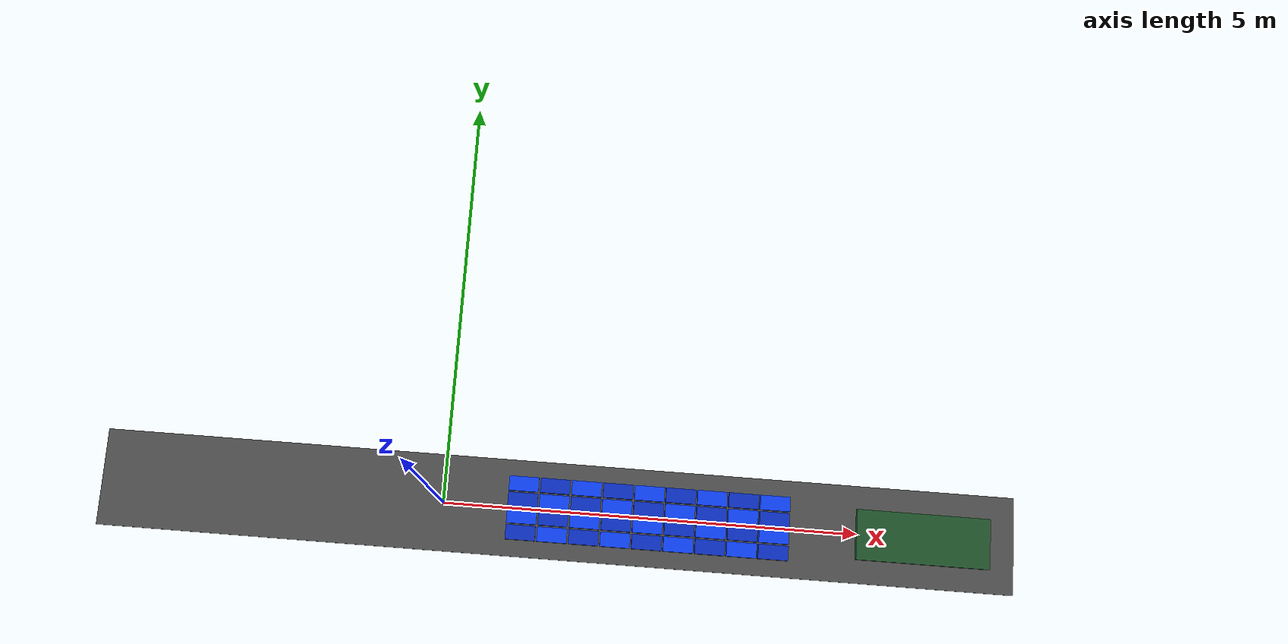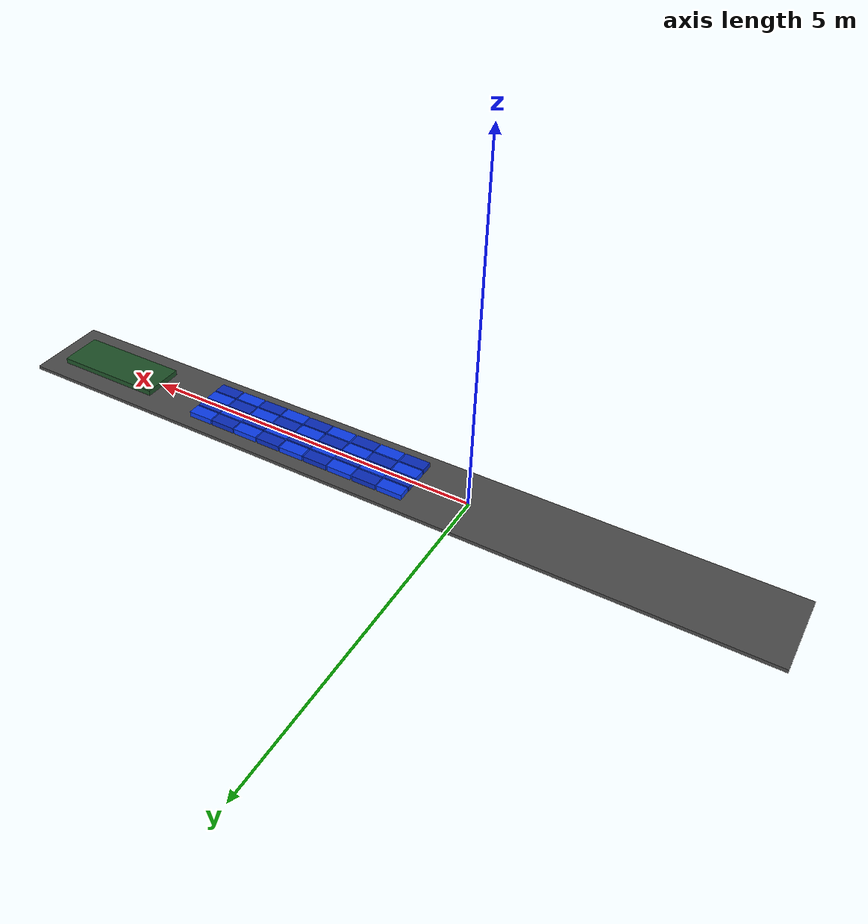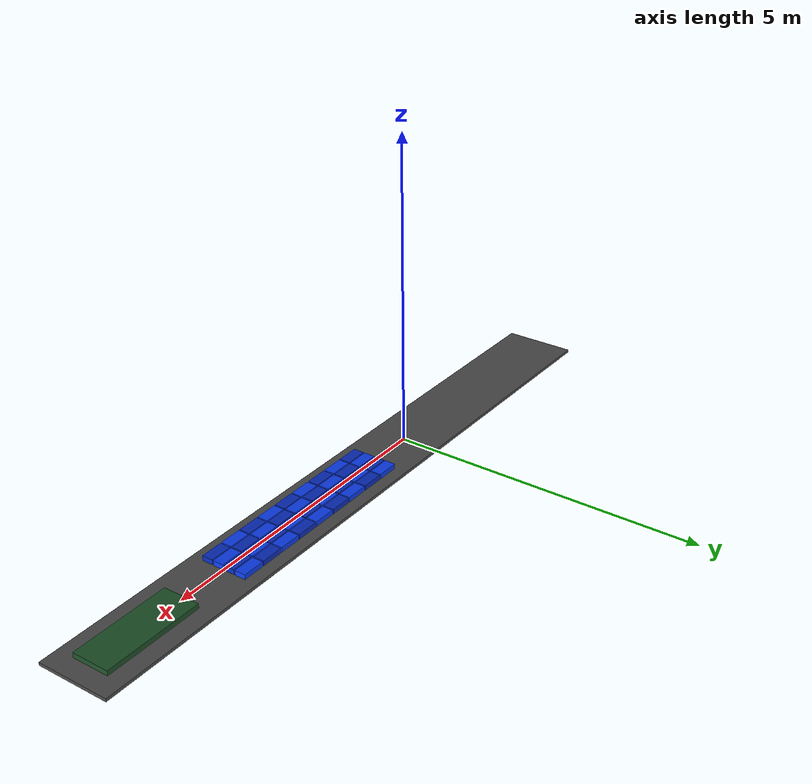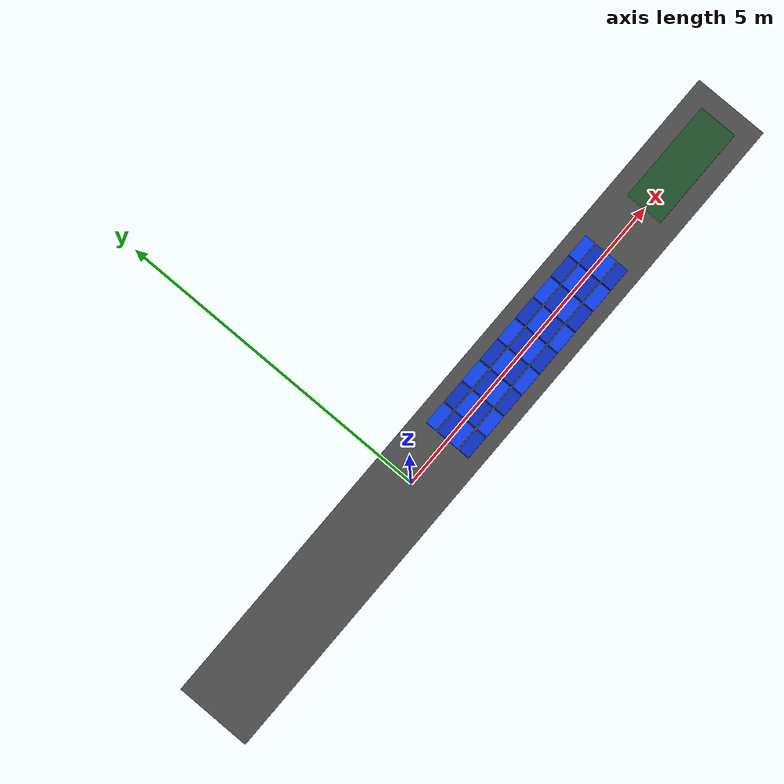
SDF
<sdf version="1.10">
 <world name="matrix_14x4_stream">
  <model name="platform">
   <static>true</static>
   <pose>1.355000 0 -0.025 0 0 0</pose>
   <link name="platform_link">
    <collision name="platform_collision">
     <geometry><box><size>11.050000 1.160000 0.05</size></box></geometry>
    </collision>
    <visual name="platform_visual">
     <geometry><box><size>11.050000 1.160000 0.05</size></box></geometry>
     <material><ambient>0.20 0.20 0.20 1</ambient><diffuse>0.30 0.30 0.30 1</diffuse></material>
    </visual>
   </link>
  </model>
  <model name="cell_r09_c00">
   <static>true</static>
   <pose>0.950000 -0.292500 0 0 0 0</pose>
   <link name="belt">
    <pose>0 0 0.040000 0 0 0</pose>
    <collision name="belt_collision">
     <max_contacts>8</max_contacts>
     <geometry><box><size>0.360000 0.175000 0.080000</size></box></geometry>
     <surface><friction><ode><mu>0.8</mu><mu2>0.8</mu2><fdir1>1 0 0</fdir1></ode></friction></surface>
    </collision>
    <visual name="belt_visual">
     <geometry><box><size>0.360000 0.175000 0.080000</size></box></geometry>
     <material><ambient>0.040 0.180 0.750 1</ambient><diffuse>0.040 0.180 0.750 1</diffuse></material>
    </visual>
   </link>
   <plugin filename="gz-sim-track-controller-system" name="gz::sim::systems::TrackController">
    <link>belt</link>
    <track_orientation>0 0 0</track_orientation>
    <velocity_topic>/singulator/cell/r09_c00/cmd_vel</velocity_topic>
    <odometry_topic>/singulator/cell/r09_c00/odometry</odometry_topic>
    <odometry_publish_frequency>1</odometry_publish_frequency>
    <min_velocity>-3.0</min_velocity>
    <max_velocity>3.0</max_velocity>
    <min_acceleration>-6.0</min_acceleration>
    <max_acceleration>6.0</max_acceleration>
    <min_jerk>-30.0</min_jerk>
    <max_jerk>30.0</max_jerk>
    <max_command_age>2.0</max_command_age>
   </plugin>
  </model>
  <model name="cell_r09_c01">
   <static>true</static>
   <pose>0.950000 -0.097500 0 0 0 0</pose>
   <link name="belt">
    <pose>0 0 0.040000 0 0 0</pose>
    <collision name="belt_collision">
     <max_contacts>8</max_contacts>
     <geometry><box><size>0.360000 0.175000 0.080000</size></box></geometry>
     <surface><friction><ode><mu>0.8</mu><mu2>0.8</mu2><fdir1>1 0 0</fdir1></ode></friction></surface>
    </collision>
    <visual name="belt_visual">
     <geometry><box><size>0.360000 0.175000 0.080000</size></box></geometry>
     <material><ambient>0.050 0.250 0.950 1</ambient><diffuse>0.050 0.250 0.950 1</diffuse></material>
    </visual>
   </link>
   <plugin filename="gz-sim-track-controller-system" name="gz::sim::systems::TrackController">
    <link>belt</link>
    <track_orientation>0 0 0</track_orientation>
    <velocity_topic>/singulator/cell/r09_c01/cmd_vel</velocity_topic>
    <odometry_topic>/singulator/cell/r09_c01/odometry</odometry_topic>
    <odometry_publish_frequency>1</odometry_publish_frequency>
    <min_velocity>-3.0</min_velocity>
    <max_velocity>3.0</max_velocity>
    <min_acceleration>-6.0</min_acceleration>
    <max_acceleration>6.0</max_acceleration>
    <min_jerk>-30.0</min_jerk>
    <max_jerk>30.0</max_jerk>
    <max_command_age>2.0</max_command_age>
   </plugin>
  </model>
  <model name="cell_r09_c02">
   <static>true</static>
   <pose>0.950000 0.097500 0 0 0 0</pose>
   <link name="belt">
    <pose>0 0 0.040000 0 0 0</pose>
    <collision name="belt_collision">
     <max_contacts>8</max_contacts>
     <geometry><box><size>0.360000 0.175000 0.080000</size></box></geometry>
     <surface><friction><ode><mu>0.8</mu><mu2>0.8</mu2><fdir1>1 0 0</fdir1></ode></friction></surface>
    </collision>
    <visual name="belt_visual">
     <geometry><box><size>0.360000 0.175000 0.080000</size></box></geometry>
     <material><ambient>0.040 0.180 0.750 1</ambient><diffuse>0.040 0.180 0.750 1</diffuse></material>
    </visual>
   </link>
   <plugin filename="gz-sim-track-controller-system" name="gz::sim::systems::TrackController">
    <link>belt</link>
    <track_orientation>0 0 0</track_orientation>
    <velocity_topic>/singulator/cell/r09_c02/cmd_vel</velocity_topic>
    <odometry_topic>/singulator/cell/r09_c02/odometry</odometry_topic>
    <odometry_publish_frequency>1</odometry_publish_frequency>
    <min_velocity>-3.0</min_velocity>
    <max_velocity>3.0</max_velocity>
    <min_acceleration>-6.0</min_acceleration>
    <max_acceleration>6.0</max_acceleration>
    <min_jerk>-30.0</min_jerk>
    <max_jerk>30.0</max_jerk>
    <max_command_age>2.0</max_command_age>
   </plugin>
  </model>
  <model name="cell_r09_c03">
   <static>true</static>
   <pose>0.950000 0.292500 0 0 0 0</pose>
   <link name="belt">
    <pose>0 0 0.040000 0 0 0</pose>
    <collision name="belt_collision">
     <max_contacts>8</max_contacts>
     <geometry><box><size>0.360000 0.175000 0.080000</size></box></geometry>
     <surface><friction><ode><mu>0.8</mu><mu2>0.8</mu2><fdir1>1 0 0</fdir1></ode></friction></surface>
    </collision>
    <visual name="belt_visual">
     <geometry><box><size>0.360000 0.175000 0.080000</size></box></geometry>
     <material><ambient>0.050 0.250 0.950 1</ambient><diffuse>0.050 0.250 0.950 1</diffuse></material>
    </visual>
   </link>
   <plugin filename="gz-sim-track-controller-system" name="gz::sim::systems::TrackController">
    <link>belt</link>
    <track_orientation>0 0 0</track_orientation>
    <velocity_topic>/singulator/cell/r09_c03/cmd_vel</velocity_topic>
    <odometry_topic>/singulator/cell/r09_c03/odometry</odometry_topic>
    <odometry_publish_frequency>1</odometry_publish_frequency>
    <min_velocity>-3.0</min_velocity>
    <max_velocity>3.0</max_velocity>
    <min_acceleration>-6.0</min_acceleration>
    <max_acceleration>6.0</max_acceleration>
    <min_jerk>-30.0</min_jerk>
    <max_jerk>30.0</max_jerk>
    <max_command_age>2.0</max_command_age>
   </plugin>
  </model>
  <model name="cell_r10_c00">
   <static>true</static>
   <pose>1.330000 -0.292500 0 0 0 0</pose>
   <link name="belt">
    <pose>0 0 0.040000 0 0 0</pose>
    <collision name="belt_collision">
     <max_contacts>8</max_contacts>
     <geometry><box><size>0.360000 0.175000 0.080000</size></box></geometry>
     <surface><friction><ode><mu>0.8</mu><mu2>0.8</mu2><fdir1>1 0 0</fdir1></ode></friction></surface>
    </collision>
    <visual name="belt_visual">
     <geometry><box><size>0.360000 0.175000 0.080000</size></box></geometry>
     <material><ambient>0.050 0.250 0.950 1</ambient><diffuse>0.050 0.250 0.950 1</diffuse></material>
    </visual>
   </link>
   <plugin filename="gz-sim-track-controller-system" name="gz::sim::systems::TrackController">
    <link>belt</link>
    <track_orientation>0 0 0</track_orientation>
    <velocity_topic>/singulator/cell/r10_c00/cmd_vel</velocity_topic>
    <odometry_topic>/singulator/cell/r10_c00/odometry</odometry_topic>
    <odometry_publish_frequency>1</odometry_publish_frequency>
    <min_velocity>-3.0</min_velocity>
    <max_velocity>3.0</max_velocity>
    <min_acceleration>-6.0</min_acceleration>
    <max_acceleration>6.0</max_acceleration>
    <min_jerk>-30.0</min_jerk>
    <max_jerk>30.0</max_jerk>
    <max_command_age>2.0</max_command_age>
   </plugin>
  </model>
  <model name="cell_r10_c01">
   <static>true</static>
   <pose>1.330000 -0.097500 0 0 0 0</pose>
   <link name="belt">
    <pose>0 0 0.040000 0 0 0</pose>
    <collision name="belt_collision">
     <max_contacts>8</max_contacts>
     <geometry><box><size>0.360000 0.175000 0.080000</size></box></geometry>
     <surface><friction><ode><mu>0.8</mu><mu2>0.8</mu2><fdir1>1 0 0</fdir1></ode></friction></surface>
    </collision>
    <visual name="belt_visual">
     <geometry><box><size>0.360000 0.175000 0.080000</size></box></geometry>
     <material><ambient>0.040 0.180 0.750 1</ambient><diffuse>0.040 0.180 0.750 1</diffuse></material>
    </visual>
   </link>
   <plugin filename="gz-sim-track-controller-system" name="gz::sim::systems::TrackController">
    <link>belt</link>
    <track_orientation>0 0 0</track_orientation>
    <velocity_topic>/singulator/cell/r10_c01/cmd_vel</velocity_topic>
    <odometry_topic>/singulator/cell/r10_c01/odometry</odometry_topic>
    <odometry_publish_frequency>1</odometry_publish_frequency>
    <min_velocity>-3.0</min_velocity>
    <max_velocity>3.0</max_velocity>
    <min_acceleration>-6.0</min_acceleration>
    <max_acceleration>6.0</max_acceleration>
    <min_jerk>-30.0</min_jerk>
    <max_jerk>30.0</max_jerk>
    <max_command_age>2.0</max_command_age>
   </plugin>
  </model>
  <model name="cell_r10_c02">
   <static>true</static>
   <pose>1.330000 0.097500 0 0 0 0</pose>
   <link name="belt">
    <pose>0 0 0.040000 0 0 0</pose>
    <collision name="belt_collision">
     <max_contacts>8</max_contacts>
     <geometry><box><size>0.360000 0.175000 0.080000</size></box></geometry>
     <surface><friction><ode><mu>0.8</mu><mu2>0.8</mu2><fdir1>1 0 0</fdir1></ode></friction></surface>
    </collision>
    <visual name="belt_visual">
     <geometry><box><size>0.360000 0.175000 0.080000</size></box></geometry>
     <material><ambient>0.050 0.250 0.950 1</ambient><diffuse>0.050 0.250 0.950 1</diffuse></material>
    </visual>
   </link>
   <plugin filename="gz-sim-track-controller-system" name="gz::sim::systems::TrackController">
    <link>belt</link>
    <track_orientation>0 0 0</track_orientation>
    <velocity_topic>/singulator/cell/r10_c02/cmd_vel</velocity_topic>
    <odometry_topic>/singulator/cell/r10_c02/odometry</odometry_topic>
    <odometry_publish_frequency>1</odometry_publish_frequency>
    <min_velocity>-3.0</min_velocity>
    <max_velocity>3.0</max_velocity>
    <min_acceleration>-6.0</min_acceleration>
    <max_acceleration>6.0</max_acceleration>
    <min_jerk>-30.0</min_jerk>
    <max_jerk>30.0</max_jerk>
    <max_command_age>2.0</max_command_age>
   </plugin>
  </model>
  <model name="cell_r10_c03">
   <static>true</static>
   <pose>1.330000 0.292500 0 0 0 0</pose>
   <link name="belt">
    <pose>0 0 0.040000 0 0 0</pose>
    <collision name="belt_collision">
     <max_contacts>8</max_contacts>
     <geometry><box><size>0.360000 0.175000 0.080000</size></box></geometry>
     <surface><friction><ode><mu>0.8</mu><mu2>0.8</mu2><fdir1>1 0 0</fdir1></ode></friction></surface>
    </collision>
    <visual name="belt_visual">
     <geometry><box><size>0.360000 0.175000 0.080000</size></box></geometry>
     <material><ambient>0.040 0.180 0.750 1</ambient><diffuse>0.040 0.180 0.750 1</diffuse></material>
    </visual>
   </link>
   <plugin filename="gz-sim-track-controller-system" name="gz::sim::systems::TrackController">
    <link>belt</link>
    <track_orientation>0 0 0</track_orientation>
    <velocity_topic>/singulator/cell/r10_c03/cmd_vel</velocity_topic>
    <odometry_topic>/singulator/cell/r10_c03/odometry</odometry_topic>
    <odometry_publish_frequency>1</odometry_publish_frequency>
    <min_velocity>-3.0</min_velocity>
    <max_velocity>3.0</max_velocity>
    <min_acceleration>-6.0</min_acceleration>
    <max_acceleration>6.0</max_acceleration>
    <min_jerk>-30.0</min_jerk>
    <max_jerk>30.0</max_jerk>
    <max_command_age>2.0</max_command_age>
   </plugin>
  </model>
  <model name="cell_r11_c00">
   <static>true</static>
   <pose>1.710000 -0.292500 0 0 0 0</pose>
   <link name="belt">
    <pose>0 0 0.040000 0 0 0</pose>
    <collision name="belt_collision">
     <max_contacts>8</max_contacts>
     <geometry><box><size>0.360000 0.175000 0.080000</size></box></geometry>
     <surface><friction><ode><mu>0.8</mu><mu2>0.8</mu2><fdir1>1 0 0</fdir1></ode></friction></surface>
    </collision>
    <visual name="belt_visual">
     <geometry><box><size>0.360000 0.175000 0.080000</size></box></geometry>
     <material><ambient>0.040 0.180 0.750 1</ambient><diffuse>0.040 0.180 0.750 1</diffuse></material>
    </visual>
   </link>
   <plugin filename="gz-sim-track-controller-system" name="gz::sim::systems::TrackController">
    <link>belt</link>
    <track_orientation>0 0 0</track_orientation>
    <velocity_topic>/singulator/cell/r11_c00/cmd_vel</velocity_topic>
    <odometry_topic>/singulator/cell/r11_c00/odometry</odometry_topic>
    <odometry_publish_frequency>1</odometry_publish_frequency>
    <min_velocity>-3.0</min_velocity>
    <max_velocity>3.0</max_velocity>
    <min_acceleration>-6.0</min_acceleration>
    <max_acceleration>6.0</max_acceleration>
    <min_jerk>-30.0</min_jerk>
    <max_jerk>30.0</max_jerk>
    <max_command_age>2.0</max_command_age>
   </plugin>
  </model>
  <model name="cell_r11_c01">
   <static>true</static>
   <pose>1.710000 -0.097500 0 0 0 0</pose>
   <link name="belt">
    <pose>0 0 0.040000 0 0 0</pose>
    <collision name="belt_collision">
     <max_contacts>8</max_contacts>
     <geometry><box><size>0.360000 0.175000 0.080000</size></box></geometry>
     <surface><friction><ode><mu>0.8</mu><mu2>0.8</mu2><fdir1>1 0 0</fdir1></ode></friction></surface>
    </collision>
    <visual name="belt_visual">
     <geometry><box><size>0.360000 0.175000 0.080000</size></box></geometry>
     <material><ambient>0.050 0.250 0.950 1</ambient><diffuse>0.050 0.250 0.950 1</diffuse></material>
    </visual>
   </link>
   <plugin filename="gz-sim-track-controller-system" name="gz::sim::systems::TrackController">
    <link>belt</link>
    <track_orientation>0 0 0</track_orientation>
    <velocity_topic>/singulator/cell/r11_c01/cmd_vel</velocity_topic>
    <odometry_topic>/singulator/cell/r11_c01/odometry</odometry_topic>
    <odometry_publish_frequency>1</odometry_publish_frequency>
    <min_velocity>-3.0</min_velocity>
    <max_velocity>3.0</max_velocity>
    <min_acceleration>-6.0</min_acceleration>
    <max_acceleration>6.0</max_acceleration>
    <min_jerk>-30.0</min_jerk>
    <max_jerk>30.0</max_jerk>
    <max_command_age>2.0</max_command_age>
   </plugin>
  </model>
  <model name="cell_r11_c02">
   <static>true</static>
   <pose>1.710000 0.097500 0 0 0 0</pose>
   <link name="belt">
    <pose>0 0 0.040000 0 0 0</pose>
    <collision name="belt_collision">
     <max_contacts>8</max_contacts>
     <geometry><box><size>0.360000 0.175000 0.080000</size></box></geometry>
     <surface><friction><ode><mu>0.8</mu><mu2>0.8</mu2><fdir1>1 0 0</fdir1></ode></friction></surface>
    </collision>
    <visual name="belt_visual">
     <geometry><box><size>0.360000 0.175000 0.080000</size></box></geometry>
     <material><ambient>0.040 0.180 0.750 1</ambient><diffuse>0.040 0.180 0.750 1</diffuse></material>
    </visual>
   </link>
   <plugin filename="gz-sim-track-controller-system" name="gz::sim::systems::TrackController">
    <link>belt</link>
    <track_orientation>0 0 0</track_orientation>
    <velocity_topic>/singulator/cell/r11_c02/cmd_vel</velocity_topic>
    <odometry_topic>/singulator/cell/r11_c02/odometry</odometry_topic>
    <odometry_publish_frequency>1</odometry_publish_frequency>
    <min_velocity>-3.0</min_velocity>
    <max_velocity>3.0</max_velocity>
    <min_acceleration>-6.0</min_acceleration>
    <max_acceleration>6.0</max_acceleration>
    <min_jerk>-30.0</min_jerk>
    <max_jerk>30.0</max_jerk>
    <max_command_age>2.0</max_command_age>
   </plugin>
  </model>
  <model name="cell_r11_c03">
   <static>true</static>
   <pose>1.710000 0.292500 0 0 0 0</pose>
   <link name="belt">
    <pose>0 0 0.040000 0 0 0</pose>
    <collision name="belt_collision">
     <max_contacts>8</max_contacts>
     <geometry><box><size>0.360000 0.175000 0.080000</size></box></geometry>
     <surface><friction><ode><mu>0.8</mu><mu2>0.8</mu2><fdir1>1 0 0</fdir1></ode></friction></surface>
    </collision>
    <visual name="belt_visual">
     <geometry><box><size>0.360000 0.175000 0.080000</size></box></geometry>
     <material><ambient>0.050 0.250 0.950 1</ambient><diffuse>0.050 0.250 0.950 1</diffuse></material>
    </visual>
   </link>
   <plugin filename="gz-sim-track-controller-system" name="gz::sim::systems::TrackController">
    <link>belt</link>
    <track_orientation>0 0 0</track_orientation>
    <velocity_topic>/singulator/cell/r11_c03/cmd_vel</velocity_topic>
    <odometry_topic>/singulator/cell/r11_c03/odometry</odometry_topic>
    <odometry_publish_frequency>1</odometry_publish_frequency>
    <min_velocity>-3.0</min_velocity>
    <max_velocity>3.0</max_velocity>
    <min_acceleration>-6.0</min_acceleration>
    <max_acceleration>6.0</max_acceleration>
    <min_jerk>-30.0</min_jerk>
    <max_jerk>30.0</max_jerk>
    <max_command_age>2.0</max_command_age>
   </plugin>
  </model>
  <model name="cell_r12_c00">
   <static>true</static>
   <pose>2.090000 -0.292500 0 0 0 0</pose>
   <link name="belt">
    <pose>0 0 0.040000 0 0 0</pose>
    <collision name="belt_collision">
     <max_contacts>8</max_contacts>
     <geometry><box><size>0.360000 0.175000 0.080000</size></box></geometry>
     <surface><friction><ode><mu>0.8</mu><mu2>0.8</mu2><fdir1>1 0 0</fdir1></ode></friction></surface>
    </collision>
    <visual name="belt_visual">
     <geometry><box><size>0.360000 0.175000 0.080000</size></box></geometry>
     <material><ambient>0.050 0.250 0.950 1</ambient><diffuse>0.050 0.250 0.950 1</diffuse></material>
    </visual>
   </link>
   <plugin filename="gz-sim-track-controller-system" name="gz::sim::systems::TrackController">
    <link>belt</link>
    <track_orientation>0 0 0</track_orientation>
    <velocity_topic>/singulator/cell/r12_c00/cmd_vel</velocity_topic>
    <odometry_topic>/singulator/cell/r12_c00/odometry</odometry_topic>
    <odometry_publish_frequency>1</odometry_publish_frequency>
    <min_velocity>-3.0</min_velocity>
    <max_velocity>3.0</max_velocity>
    <min_acceleration>-6.0</min_acceleration>
    <max_acceleration>6.0</max_acceleration>
    <min_jerk>-30.0</min_jerk>
    <max_jerk>30.0</max_jerk>
    <max_command_age>2.0</max_command_age>
   </plugin>
  </model>
  <model name="cell_r12_c01">
   <static>true</static>
   <pose>2.090000 -0.097500 0 0 0 0</pose>
   <link name="belt">
    <pose>0 0 0.040000 0 0 0</pose>
    <collision name="belt_collision">
     <max_contacts>8</max_contacts>
     <geometry><box><size>0.360000 0.175000 0.080000</size></box></geometry>
     <surface><friction><ode><mu>0.8</mu><mu2>0.8</mu2><fdir1>1 0 0</fdir1></ode></friction></surface>
    </collision>
    <visual name="belt_visual">
     <geometry><box><size>0.360000 0.175000 0.080000</size></box></geometry>
     <material><ambient>0.040 0.180 0.750 1</ambient><diffuse>0.040 0.180 0.750 1</diffuse></material>
    </visual>
   </link>
   <plugin filename="gz-sim-track-controller-system" name="gz::sim::systems::TrackController">
    <link>belt</link>
    <track_orientation>0 0 0</track_orientation>
    <velocity_topic>/singulator/cell/r12_c01/cmd_vel</velocity_topic>
    <odometry_topic>/singulator/cell/r12_c01/odometry</odometry_topic>
    <odometry_publish_frequency>1</odometry_publish_frequency>
    <min_velocity>-3.0</min_velocity>
    <max_velocity>3.0</max_velocity>
    <min_acceleration>-6.0</min_acceleration>
    <max_acceleration>6.0</max_acceleration>
    <min_jerk>-30.0</min_jerk>
    <max_jerk>30.0</max_jerk>
    <max_command_age>2.0</max_command_age>
   </plugin>
  </model>
  <model name="cell_r12_c02">
   <static>true</static>
   <pose>2.090000 0.097500 0 0 0 0</pose>
   <link name="belt">
    <pose>0 0 0.040000 0 0 0</pose>
    <collision name="belt_collision">
     <max_contacts>8</max_contacts>
     <geometry><box><size>0.360000 0.175000 0.080000</size></box></geometry>
     <surface><friction><ode><mu>0.8</mu><mu2>0.8</mu2><fdir1>1 0 0</fdir1></ode></friction></surface>
    </collision>
    <visual name="belt_visual">
     <geometry><box><size>0.360000 0.175000 0.080000</size></box></geometry>
     <material><ambient>0.050 0.250 0.950 1</ambient><diffuse>0.050 0.250 0.950 1</diffuse></material>
    </visual>
   </link>
   <plugin filename="gz-sim-track-controller-system" name="gz::sim::systems::TrackController">
    <link>belt</link>
    <track_orientation>0 0 0</track_orientation>
    <velocity_topic>/singulator/cell/r12_c02/cmd_vel</velocity_topic>
    <odometry_topic>/singulator/cell/r12_c02/odometry</odometry_topic>
    <odometry_publish_frequency>1</odometry_publish_frequency>
    <min_velocity>-3.0</min_velocity>
    <max_velocity>3.0</max_velocity>
    <min_acceleration>-6.0</min_acceleration>
    <max_acceleration>6.0</max_acceleration>
    <min_jerk>-30.0</min_jerk>
    <max_jerk>30.0</max_jerk>
    <max_command_age>2.0</max_command_age>
   </plugin>
  </model>
  <model name="cell_r12_c03">
   <static>true</static>
   <pose>2.090000 0.292500 0 0 0 0</pose>
   <link name="belt">
    <pose>0 0 0.040000 0 0 0</pose>
    <collision name="belt_collision">
     <max_contacts>8</max_contacts>
     <geometry><box><size>0.360000 0.175000 0.080000</size></box></geometry>
     <surface><friction><ode><mu>0.8</mu><mu2>0.8</mu2><fdir1>1 0 0</fdir1></ode></friction></surface>
    </collision>
    <visual name="belt_visual">
     <geometry><box><size>0.360000 0.175000 0.080000</size></box></geometry>
     <material><ambient>0.040 0.180 0.750 1</ambient><diffuse>0.040 0.180 0.750 1</diffuse></material>
    </visual>
   </link>
   <plugin filename="gz-sim-track-controller-system" name="gz::sim::systems::TrackController">
    <link>belt</link>
    <track_orientation>0 0 0</track_orientation>
    <velocity_topic>/singulator/cell/r12_c03/cmd_vel</velocity_topic>
    <odometry_topic>/singulator/cell/r12_c03/odometry</odometry_topic>
    <odometry_publish_frequency>1</odometry_publish_frequency>
    <min_velocity>-3.0</min_velocity>
    <max_velocity>3.0</max_velocity>
    <min_acceleration>-6.0</min_acceleration>
    <max_acceleration>6.0</max_acceleration>
    <min_jerk>-30.0</min_jerk>
    <max_jerk>30.0</max_jerk>
    <max_command_age>2.0</max_command_age>
   </plugin>
  </model>
  <model name="cell_r13_c00">
   <static>true</static>
   <pose>2.470000 -0.292500 0 0 0 0</pose>
   <link name="belt">
    <pose>0 0 0.040000 0 0 0</pose>
    <collision name="belt_collision">
     <max_contacts>8</max_contacts>
     <geometry><box><size>0.360000 0.175000 0.080000</size></box></geometry>
     <surface><friction><ode><mu>0.8</mu><mu2>0.8</mu2><fdir1>1 0 0</fdir1></ode></friction></surface>
    </collision>
    <visual name="belt_visual">
     <geometry><box><size>0.360000 0.175000 0.080000</size></box></geometry>
     <material><ambient>0.040 0.180 0.750 1</ambient><diffuse>0.040 0.180 0.750 1</diffuse></material>
    </visual>
   </link>
   <plugin filename="gz-sim-track-controller-system" name="gz::sim::systems::TrackController">
    <link>belt</link>
    <track_orientation>0 0 0</track_orientation>
    <velocity_topic>/singulator/cell/r13_c00/cmd_vel</velocity_topic>
    <odometry_topic>/singulator/cell/r13_c00/odometry</odometry_topic>
    <odometry_publish_frequency>1</odometry_publish_frequency>
    <min_velocity>-3.0</min_velocity>
    <max_velocity>3.0</max_velocity>
    <min_acceleration>-6.0</min_acceleration>
    <max_acceleration>6.0</max_acceleration>
    <min_jerk>-30.0</min_jerk>
    <max_jerk>30.0</max_jerk>
    <max_command_age>2.0</max_command_age>
   </plugin>
  </model>
  <model name="cell_r13_c01">
   <static>true</static>
   <pose>2.470000 -0.097500 0 0 0 0</pose>
   <link name="belt">
    <pose>0 0 0.040000 0 0 0</pose>
    <collision name="belt_collision">
     <max_contacts>8</max_contacts>
     <geometry><box><size>0.360000 0.175000 0.080000</size></box></geometry>
     <surface><friction><ode><mu>0.8</mu><mu2>0.8</mu2><fdir1>1 0 0</fdir1></ode></friction></surface>
    </collision>
    <visual name="belt_visual">
     <geometry><box><size>0.360000 0.175000 0.080000</size></box></geometry>
     <material><ambient>0.050 0.250 0.950 1</ambient><diffuse>0.050 0.250 0.950 1</diffuse></material>
    </visual>
   </link>
   <plugin filename="gz-sim-track-controller-system" name="gz::sim::systems::TrackController">
    <link>belt</link>
    <track_orientation>0 0 0</track_orientation>
    <velocity_topic>/singulator/cell/r13_c01/cmd_vel</velocity_topic>
    <odometry_topic>/singulator/cell/r13_c01/odometry</odometry_topic>
    <odometry_publish_frequency>1</odometry_publish_frequency>
    <min_velocity>-3.0</min_velocity>
    <max_velocity>3.0</max_velocity>
    <min_acceleration>-6.0</min_acceleration>
    <max_acceleration>6.0</max_acceleration>
    <min_jerk>-30.0</min_jerk>
    <max_jerk>30.0</max_jerk>
    <max_command_age>2.0</max_command_age>
   </plugin>
  </model>
  <model name="cell_r13_c02">
   <static>true</static>
   <pose>2.470000 0.097500 0 0 0 0</pose>
   <link name="belt">
    <pose>0 0 0.040000 0 0 0</pose>
    <collision name="belt_collision">
     <max_contacts>8</max_contacts>
     <geometry><box><size>0.360000 0.175000 0.080000</size></box></geometry>
     <surface><friction><ode><mu>0.8</mu><mu2>0.8</mu2><fdir1>1 0 0</fdir1></ode></friction></surface>
    </collision>
    <visual name="belt_visual">
     <geometry><box><size>0.360000 0.175000 0.080000</size></box></geometry>
     <material><ambient>0.040 0.180 0.750 1</ambient><diffuse>0.040 0.180 0.750 1</diffuse></material>
    </visual>
   </link>
   <plugin filename="gz-sim-track-controller-system" name="gz::sim::systems::TrackController">
    <link>belt</link>
    <track_orientation>0 0 0</track_orientation>
    <velocity_topic>/singulator/cell/r13_c02/cmd_vel</velocity_topic>
    <odometry_topic>/singulator/cell/r13_c02/odometry</odometry_topic>
    <odometry_publish_frequency>1</odometry_publish_frequency>
    <min_velocity>-3.0</min_velocity>
    <max_velocity>3.0</max_velocity>
    <min_acceleration>-6.0</min_acceleration>
    <max_acceleration>6.0</max_acceleration>
    <min_jerk>-30.0</min_jerk>
    <max_jerk>30.0</max_jerk>
    <max_command_age>2.0</max_command_age>
   </plugin>
  </model>
  <model name="cell_r13_c03">
   <static>true</static>
   <pose>2.470000 0.292500 0 0 0 0</pose>
   <link name="belt">
    <pose>0 0 0.040000 0 0 0</pose>
    <collision name="belt_collision">
     <max_contacts>8</max_contacts>
     <geometry><box><size>0.360000 0.175000 0.080000</size></box></geometry>
     <surface><friction><ode><mu>0.8</mu><mu2>0.8</mu2><fdir1>1 0 0</fdir1></ode></friction></surface>
    </collision>
    <visual name="belt_visual">
     <geometry><box><size>0.360000 0.175000 0.080000</size></box></geometry>
     <material><ambient>0.050 0.250 0.950 1</ambient><diffuse>0.050 0.250 0.950 1</diffuse></material>
    </visual>
   </link>
   <plugin filename="gz-sim-track-controller-system" name="gz::sim::systems::TrackController">
    <link>belt</link>
    <track_orientation>0 0 0</track_orientation>
    <velocity_topic>/singulator/cell/r13_c03/cmd_vel</velocity_topic>
    <odometry_topic>/singulator/cell/r13_c03/odometry</odometry_topic>
    <odometry_publish_frequency>1</odometry_publish_frequency>
    <min_velocity>-3.0</min_velocity>
    <max_velocity>3.0</max_velocity>
    <min_acceleration>-6.0</min_acceleration>
    <max_acceleration>6.0</max_acceleration>
    <min_jerk>-30.0</min_jerk>
    <max_jerk>30.0</max_jerk>
    <max_command_age>2.0</max_command_age>
   </plugin>
  </model>
  <model name="cell_r14_c00">
   <static>true</static>
   <pose>2.850000 -0.292500 0 0 0 0</pose>
   <link name="belt">
    <pose>0 0 0.040000 0 0 0</pose>
    <collision name="belt_collision">
     <max_contacts>8</max_contacts>
     <geometry><box><size>0.360000 0.175000 0.080000</size></box></geometry>
     <surface><friction><ode><mu>0.8</mu><mu2>0.8</mu2><fdir1>1 0 0</fdir1></ode></friction></surface>
    </collision>
    <visual name="belt_visual">
     <geometry><box><size>0.360000 0.175000 0.080000</size></box></geometry>
     <material><ambient>0.050 0.250 0.950 1</ambient><diffuse>0.050 0.250 0.950 1</diffuse></material>
    </visual>
   </link>
   <plugin filename="gz-sim-track-controller-system" name="gz::sim::systems::TrackController">
    <link>belt</link>
    <track_orientation>0 0 0</track_orientation>
    <velocity_topic>/singulator/cell/r14_c00/cmd_vel</velocity_topic>
    <odometry_topic>/singulator/cell/r14_c00/odometry</odometry_topic>
    <odometry_publish_frequency>1</odometry_publish_frequency>
    <min_velocity>-3.0</min_velocity>
    <max_velocity>3.0</max_velocity>
    <min_acceleration>-6.0</min_acceleration>
    <max_acceleration>6.0</max_acceleration>
    <min_jerk>-30.0</min_jerk>
    <max_jerk>30.0</max_jerk>
    <max_command_age>2.0</max_command_age>
   </plugin>
  </model>
  <model name="cell_r14_c01">
   <static>true</static>
   <pose>2.850000 -0.097500 0 0 0 0</pose>
   <link name="belt">
    <pose>0 0 0.040000 0 0 0</pose>
    <collision name="belt_collision">
     <max_contacts>8</max_contacts>
     <geometry><box><size>0.360000 0.175000 0.080000</size></box></geometry>
     <surface><friction><ode><mu>0.8</mu><mu2>0.8</mu2><fdir1>1 0 0</fdir1></ode></friction></surface>
    </collision>
    <visual name="belt_visual">
     <geometry><box><size>0.360000 0.175000 0.080000</size></box></geometry>
     <material><ambient>0.040 0.180 0.750 1</ambient><diffuse>0.040 0.180 0.750 1</diffuse></material>
    </visual>
   </link>
   <plugin filename="gz-sim-track-controller-system" name="gz::sim::systems::TrackController">
    <link>belt</link>
    <track_orientation>0 0 0</track_orientation>
    <velocity_topic>/singulator/cell/r14_c01/cmd_vel</velocity_topic>
    <odometry_topic>/singulator/cell/r14_c01/odometry</odometry_topic>
    <odometry_publish_frequency>1</odometry_publish_frequency>
    <min_velocity>-3.0</min_velocity>
    <max_velocity>3.0</max_velocity>
    <min_acceleration>-6.0</min_acceleration>
    <max_acceleration>6.0</max_acceleration>
    <min_jerk>-30.0</min_jerk>
    <max_jerk>30.0</max_jerk>
    <max_command_age>2.0</max_command_age>
   </plugin>
  </model>
  <model name="cell_r14_c02">
   <static>true</static>
   <pose>2.850000 0.097500 0 0 0 0</pose>
   <link name="belt">
    <pose>0 0 0.040000 0 0 0</pose>
    <collision name="belt_collision">
     <max_contacts>8</max_contacts>
     <geometry><box><size>0.360000 0.175000 0.080000</size></box></geometry>
     <surface><friction><ode><mu>0.8</mu><mu2>0.8</mu2><fdir1>1 0 0</fdir1></ode></friction></surface>
    </collision>
    <visual name="belt_visual">
     <geometry><box><size>0.360000 0.175000 0.080000</size></box></geometry>
     <material><ambient>0.050 0.250 0.950 1</ambient><diffuse>0.050 0.250 0.950 1</diffuse></material>
    </visual>
   </link>
   <plugin filename="gz-sim-track-controller-system" name="gz::sim::systems::TrackController">
    <link>belt</link>
    <track_orientation>0 0 0</track_orientation>
    <velocity_topic>/singulator/cell/r14_c02/cmd_vel</velocity_topic>
    <odometry_topic>/singulator/cell/r14_c02/odometry</odometry_topic>
    <odometry_publish_frequency>1</odometry_publish_frequency>
    <min_velocity>-3.0</min_velocity>
    <max_velocity>3.0</max_velocity>
    <min_acceleration>-6.0</min_acceleration>
    <max_acceleration>6.0</max_acceleration>
    <min_jerk>-30.0</min_jerk>
    <max_jerk>30.0</max_jerk>
    <max_command_age>2.0</max_command_age>
   </plugin>
  </model>
  <model name="cell_r14_c03">
   <static>true</static>
   <pose>2.850000 0.292500 0 0 0 0</pose>
   <link name="belt">
    <pose>0 0 0.040000 0 0 0</pose>
    <collision name="belt_collision">
     <max_contacts>8</max_contacts>
     <geometry><box><size>0.360000 0.175000 0.080000</size></box></geometry>
     <surface><friction><ode><mu>0.8</mu><mu2>0.8</mu2><fdir1>1 0 0</fdir1></ode></friction></surface>
    </collision>
    <visual name="belt_visual">
     <geometry><box><size>0.360000 0.175000 0.080000</size></box></geometry>
     <material><ambient>0.040 0.180 0.750 1</ambient><diffuse>0.040 0.180 0.750 1</diffuse></material>
    </visual>
   </link>
   <plugin filename="gz-sim-track-controller-system" name="gz::sim::systems::TrackController">
    <link>belt</link>
    <track_orientation>0 0 0</track_orientation>
    <velocity_topic>/singulator/cell/r14_c03/cmd_vel</velocity_topic>
    <odometry_topic>/singulator/cell/r14_c03/odometry</odometry_topic>
    <odometry_publish_frequency>1</odometry_publish_frequency>
    <min_velocity>-3.0</min_velocity>
    <max_velocity>3.0</max_velocity>
    <min_acceleration>-6.0</min_acceleration>
    <max_acceleration>6.0</max_acceleration>
    <min_jerk>-30.0</min_jerk>
    <max_jerk>30.0</max_jerk>
    <max_command_age>2.0</max_command_age>
   </plugin>
  </model>
  <model name="cell_r15_c00">
   <static>true</static>
   <pose>3.230000 -0.292500 0 0 0 0</pose>
   <link name="belt">
    <pose>0 0 0.040000 0 0 0</pose>
    <collision name="belt_collision">
     <max_contacts>8</max_contacts>
     <geometry><box><size>0.360000 0.175000 0.080000</size></box></geometry>
     <surface><friction><ode><mu>0.8</mu><mu2>0.8</mu2><fdir1>1 0 0</fdir1></ode></friction></surface>
    </collision>
    <visual name="belt_visual">
     <geometry><box><size>0.360000 0.175000 0.080000</size></box></geometry>
     <material><ambient>0.040 0.180 0.750 1</ambient><diffuse>0.040 0.180 0.750 1</diffuse></material>
    </visual>
   </link>
   <plugin filename="gz-sim-track-controller-system" name="gz::sim::systems::TrackController">
    <link>belt</link>
    <track_orientation>0 0 0</track_orientation>
    <velocity_topic>/singulator/cell/r15_c00/cmd_vel</velocity_topic>
    <odometry_topic>/singulator/cell/r15_c00/odometry</odometry_topic>
    <odometry_publish_frequency>1</odometry_publish_frequency>
    <min_velocity>-3.0</min_velocity>
    <max_velocity>3.0</max_velocity>
    <min_acceleration>-6.0</min_acceleration>
    <max_acceleration>6.0</max_acceleration>
    <min_jerk>-30.0</min_jerk>
    <max_jerk>30.0</max_jerk>
    <max_command_age>2.0</max_command_age>
   </plugin>
  </model>
  <model name="cell_r15_c01">
   <static>true</static>
   <pose>3.230000 -0.097500 0 0 0 0</pose>
   <link name="belt">
    <pose>0 0 0.040000 0 0 0</pose>
    <collision name="belt_collision">
     <max_contacts>8</max_contacts>
     <geometry><box><size>0.360000 0.175000 0.080000</size></box></geometry>
     <surface><friction><ode><mu>0.8</mu><mu2>0.8</mu2><fdir1>1 0 0</fdir1></ode></friction></surface>
    </collision>
    <visual name="belt_visual">
     <geometry><box><size>0.360000 0.175000 0.080000</size></box></geometry>
     <material><ambient>0.050 0.250 0.950 1</ambient><diffuse>0.050 0.250 0.950 1</diffuse></material>
    </visual>
   </link>
   <plugin filename="gz-sim-track-controller-system" name="gz::sim::systems::TrackController">
    <link>belt</link>
    <track_orientation>0 0 0</track_orientation>
    <velocity_topic>/singulator/cell/r15_c01/cmd_vel</velocity_topic>
    <odometry_topic>/singulator/cell/r15_c01/odometry</odometry_topic>
    <odometry_publish_frequency>1</odometry_publish_frequency>
    <min_velocity>-3.0</min_velocity>
    <max_velocity>3.0</max_velocity>
    <min_acceleration>-6.0</min_acceleration>
    <max_acceleration>6.0</max_acceleration>
    <min_jerk>-30.0</min_jerk>
    <max_jerk>30.0</max_jerk>
    <max_command_age>2.0</max_command_age>
   </plugin>
  </model>
  <model name="cell_r15_c02">
   <static>true</static>
   <pose>3.230000 0.097500 0 0 0 0</pose>
   <link name="belt">
    <pose>0 0 0.040000 0 0 0</pose>
    <collision name="belt_collision">
     <max_contacts>8</max_contacts>
     <geometry><box><size>0.360000 0.175000 0.080000</size></box></geometry>
     <surface><friction><ode><mu>0.8</mu><mu2>0.8</mu2><fdir1>1 0 0</fdir1></ode></friction></surface>
    </collision>
    <visual name="belt_visual">
     <geometry><box><size>0.360000 0.175000 0.080000</size></box></geometry>
     <material><ambient>0.040 0.180 0.750 1</ambient><diffuse>0.040 0.180 0.750 1</diffuse></material>
    </visual>
   </link>
   <plugin filename="gz-sim-track-controller-system" name="gz::sim::systems::TrackController">
    <link>belt</link>
    <track_orientation>0 0 0</track_orientation>
    <velocity_topic>/singulator/cell/r15_c02/cmd_vel</velocity_topic>
    <odometry_topic>/singulator/cell/r15_c02/odometry</odometry_topic>
    <odometry_publish_frequency>1</odometry_publish_frequency>
    <min_velocity>-3.0</min_velocity>
    <max_velocity>3.0</max_velocity>
    <min_acceleration>-6.0</min_acceleration>
    <max_acceleration>6.0</max_acceleration>
    <min_jerk>-30.0</min_jerk>
    <max_jerk>30.0</max_jerk>
    <max_command_age>2.0</max_command_age>
   </plugin>
  </model>
  <model name="cell_r15_c03">
   <static>true</static>
   <pose>3.230000 0.292500 0 0 0 0</pose>
   <link name="belt">
    <pose>0 0 0.040000 0 0 0</pose>
    <collision name="belt_collision">
     <max_contacts>8</max_contacts>
     <geometry><box><size>0.360000 0.175000 0.080000</size></box></geometry>
     <surface><friction><ode><mu>0.8</mu><mu2>0.8</mu2><fdir1>1 0 0</fdir1></ode></friction></surface>
    </collision>
    <visual name="belt_visual">
     <geometry><box><size>0.360000 0.175000 0.080000</size></box></geometry>
     <material><ambient>0.050 0.250 0.950 1</ambient><diffuse>0.050 0.250 0.950 1</diffuse></material>
    </visual>
   </link>
   <plugin filename="gz-sim-track-controller-system" name="gz::sim::systems::TrackController">
    <link>belt</link>
    <track_orientation>0 0 0</track_orientation>
    <velocity_topic>/singulator/cell/r15_c03/cmd_vel</velocity_topic>
    <odometry_topic>/singulator/cell/r15_c03/odometry</odometry_topic>
    <odometry_publish_frequency>1</odometry_publish_frequency>
    <min_velocity>-3.0</min_velocity>
    <max_velocity>3.0</max_velocity>
    <min_acceleration>-6.0</min_acceleration>
    <max_acceleration>6.0</max_acceleration>
    <min_jerk>-30.0</min_jerk>
    <max_jerk>30.0</max_jerk>
    <max_command_age>2.0</max_command_age>
   </plugin>
  </model>
  <model name="cell_r16_c00">
   <static>true</static>
   <pose>3.610000 -0.292500 0 0 0 0</pose>
   <link name="belt">
    <pose>0 0 0.040000 0 0 0</pose>
    <collision name="belt_collision">
     <max_contacts>8</max_contacts>
     <geometry><box><size>0.360000 0.175000 0.080000</size></box></geometry>
     <surface><friction><ode><mu>0.8</mu><mu2>0.8</mu2><fdir1>1 0 0</fdir1></ode></friction></surface>
    </collision>
    <visual name="belt_visual">
     <geometry><box><size>0.360000 0.175000 0.080000</size></box></geometry>
     <material><ambient>0.050 0.250 0.950 1</ambient><diffuse>0.050 0.250 0.950 1</diffuse></material>
    </visual>
   </link>
   <plugin filename="gz-sim-track-controller-system" name="gz::sim::systems::TrackController">
    <link>belt</link>
    <track_orientation>0 0 0</track_orientation>
    <velocity_topic>/singulator/cell/r16_c00/cmd_vel</velocity_topic>
    <odometry_topic>/singulator/cell/r16_c00/odometry</odometry_topic>
    <odometry_publish_frequency>1</odometry_publish_frequency>
    <min_velocity>-3.0</min_velocity>
    <max_velocity>3.0</max_velocity>
    <min_acceleration>-6.0</min_acceleration>
    <max_acceleration>6.0</max_acceleration>
    <min_jerk>-30.0</min_jerk>
    <max_jerk>30.0</max_jerk>
    <max_command_age>2.0</max_command_age>
   </plugin>
  </model>
  <model name="cell_r16_c01">
   <static>true</static>
   <pose>3.610000 -0.097500 0 0 0 0</pose>
   <link name="belt">
    <pose>0 0 0.040000 0 0 0</pose>
    <collision name="belt_collision">
     <max_contacts>8</max_contacts>
     <geometry><box><size>0.360000 0.175000 0.080000</size></box></geometry>
     <surface><friction><ode><mu>0.8</mu><mu2>0.8</mu2><fdir1>1 0 0</fdir1></ode></friction></surface>
    </collision>
    <visual name="belt_visual">
     <geometry><box><size>0.360000 0.175000 0.080000</size></box></geometry>
     <material><ambient>0.040 0.180 0.750 1</ambient><diffuse>0.040 0.180 0.750 1</diffuse></material>
    </visual>
   </link>
   <plugin filename="gz-sim-track-controller-system" name="gz::sim::systems::TrackController">
    <link>belt</link>
    <track_orientation>0 0 0</track_orientation>
    <velocity_topic>/singulator/cell/r16_c01/cmd_vel</velocity_topic>
    <odometry_topic>/singulator/cell/r16_c01/odometry</odometry_topic>
    <odometry_publish_frequency>1</odometry_publish_frequency>
    <min_velocity>-3.0</min_velocity>
    <max_velocity>3.0</max_velocity>
    <min_acceleration>-6.0</min_acceleration>
    <max_acceleration>6.0</max_acceleration>
    <min_jerk>-30.0</min_jerk>
    <max_jerk>30.0</max_jerk>
    <max_command_age>2.0</max_command_age>
   </plugin>
  </model>
  <model name="cell_r16_c02">
   <static>true</static>
   <pose>3.610000 0.097500 0 0 0 0</pose>
   <link name="belt">
    <pose>0 0 0.040000 0 0 0</pose>
    <collision name="belt_collision">
     <max_contacts>8</max_contacts>
     <geometry><box><size>0.360000 0.175000 0.080000</size></box></geometry>
     <surface><friction><ode><mu>0.8</mu><mu2>0.8</mu2><fdir1>1 0 0</fdir1></ode></friction></surface>
    </collision>
    <visual name="belt_visual">
     <geometry><box><size>0.360000 0.175000 0.080000</size></box></geometry>
     <material><ambient>0.050 0.250 0.950 1</ambient><diffuse>0.050 0.250 0.950 1</diffuse></material>
    </visual>
   </link>
   <plugin filename="gz-sim-track-controller-system" name="gz::sim::systems::TrackController">
    <link>belt</link>
    <track_orientation>0 0 0</track_orientation>
    <velocity_topic>/singulator/cell/r16_c02/cmd_vel</velocity_topic>
    <odometry_topic>/singulator/cell/r16_c02/odometry</odometry_topic>
    <odometry_publish_frequency>1</odometry_publish_frequency>
    <min_velocity>-3.0</min_velocity>
    <max_velocity>3.0</max_velocity>
    <min_acceleration>-6.0</min_acceleration>
    <max_acceleration>6.0</max_acceleration>
    <min_jerk>-30.0</min_jerk>
    <max_jerk>30.0</max_jerk>
    <max_command_age>2.0</max_command_age>
   </plugin>
  </model>
  <model name="cell_r16_c03">
   <static>true</static>
   <pose>3.610000 0.292500 0 0 0 0</pose>
   <link name="belt">
    <pose>0 0 0.040000 0 0 0</pose>
    <collision name="belt_collision">
     <max_contacts>8</max_contacts>
     <geometry><box><size>0.360000 0.175000 0.080000</size></box></geometry>
     <surface><friction><ode><mu>0.8</mu><mu2>0.8</mu2><fdir1>1 0 0</fdir1></ode></friction></surface>
    </collision>
    <visual name="belt_visual">
     <geometry><box><size>0.360000 0.175000 0.080000</size></box></geometry>
     <material><ambient>0.040 0.180 0.750 1</ambient><diffuse>0.040 0.180 0.750 1</diffuse></material>
    </visual>
   </link>
   <plugin filename="gz-sim-track-controller-system" name="gz::sim::systems::TrackController">
    <link>belt</link>
    <track_orientation>0 0 0</track_orientation>
    <velocity_topic>/singulator/cell/r16_c03/cmd_vel</velocity_topic>
    <odometry_topic>/singulator/cell/r16_c03/odometry</odometry_topic>
    <odometry_publish_frequency>1</odometry_publish_frequency>
    <min_velocity>-3.0</min_velocity>
    <max_velocity>3.0</max_velocity>
    <min_acceleration>-6.0</min_acceleration>
    <max_acceleration>6.0</max_acceleration>
    <min_jerk>-30.0</min_jerk>
    <max_jerk>30.0</max_jerk>
    <max_command_age>2.0</max_command_age>
   </plugin>
  </model>
  <model name="cell_r17_c00">
   <static>true</static>
   <pose>3.990000 -0.292500 0 0 0 0</pose>
   <link name="belt">
    <pose>0 0 0.040000 0 0 0</pose>
    <collision name="belt_collision">
     <max_contacts>8</max_contacts>
     <geometry><box><size>0.360000 0.175000 0.080000</size></box></geometry>
     <surface><friction><ode><mu>0.8</mu><mu2>0.8</mu2><fdir1>1 0 0</fdir1></ode></friction></surface>
    </collision>
    <visual name="belt_visual">
     <geometry><box><size>0.360000 0.175000 0.080000</size></box></geometry>
     <material><ambient>0.040 0.180 0.750 1</ambient><diffuse>0.040 0.180 0.750 1</diffuse></material>
    </visual>
   </link>
   <plugin filename="gz-sim-track-controller-system" name="gz::sim::systems::TrackController">
    <link>belt</link>
    <track_orientation>0 0 0</track_orientation>
    <velocity_topic>/singulator/cell/r17_c00/cmd_vel</velocity_topic>
    <odometry_topic>/singulator/cell/r17_c00/odometry</odometry_topic>
    <odometry_publish_frequency>1</odometry_publish_frequency>
    <min_velocity>-3.0</min_velocity>
    <max_velocity>3.0</max_velocity>
    <min_acceleration>-6.0</min_acceleration>
    <max_acceleration>6.0</max_acceleration>
    <min_jerk>-30.0</min_jerk>
    <max_jerk>30.0</max_jerk>
    <max_command_age>2.0</max_command_age>
   </plugin>
  </model>
  <model name="cell_r17_c01">
   <static>true</static>
   <pose>3.990000 -0.097500 0 0 0 0</pose>
   <link name="belt">
    <pose>0 0 0.040000 0 0 0</pose>
    <collision name="belt_collision">
     <max_contacts>8</max_contacts>
     <geometry><box><size>0.360000 0.175000 0.080000</size></box></geometry>
     <surface><friction><ode><mu>0.8</mu><mu2>0.8</mu2><fdir1>1 0 0</fdir1></ode></friction></surface>
    </collision>
    <visual name="belt_visual">
     <geometry><box><size>0.360000 0.175000 0.080000</size></box></geometry>
     <material><ambient>0.050 0.250 0.950 1</ambient><diffuse>0.050 0.250 0.950 1</diffuse></material>
    </visual>
   </link>
   <plugin filename="gz-sim-track-controller-system" name="gz::sim::systems::TrackController">
    <link>belt</link>
    <track_orientation>0 0 0</track_orientation>
    <velocity_topic>/singulator/cell/r17_c01/cmd_vel</velocity_topic>
    <odometry_topic>/singulator/cell/r17_c01/odometry</odometry_topic>
    <odometry_publish_frequency>1</odometry_publish_frequency>
    <min_velocity>-3.0</min_velocity>
    <max_velocity>3.0</max_velocity>
    <min_acceleration>-6.0</min_acceleration>
    <max_acceleration>6.0</max_acceleration>
    <min_jerk>-30.0</min_jerk>
    <max_jerk>30.0</max_jerk>
    <max_command_age>2.0</max_command_age>
   </plugin>
  </model>
  <model name="cell_r17_c02">
   <static>true</static>
   <pose>3.990000 0.097500 0 0 0 0</pose>
   <link name="belt">
    <pose>0 0 0.040000 0 0 0</pose>
    <collision name="belt_collision">
     <max_contacts>8</max_contacts>
     <geometry><box><size>0.360000 0.175000 0.080000</size></box></geometry>
     <surface><friction><ode><mu>0.8</mu><mu2>0.8</mu2><fdir1>1 0 0</fdir1></ode></friction></surface>
    </collision>
    <visual name="belt_visual">
     <geometry><box><size>0.360000 0.175000 0.080000</size></box></geometry>
     <material><ambient>0.040 0.180 0.750 1</ambient><diffuse>0.040 0.180 0.750 1</diffuse></material>
    </visual>
   </link>
   <plugin filename="gz-sim-track-controller-system" name="gz::sim::systems::TrackController">
    <link>belt</link>
    <track_orientation>0 0 0</track_orientation>
    <velocity_topic>/singulator/cell/r17_c02/cmd_vel</velocity_topic>
    <odometry_topic>/singulator/cell/r17_c02/odometry</odometry_topic>
    <odometry_publish_frequency>1</odometry_publish_frequency>
    <min_velocity>-3.0</min_velocity>
    <max_velocity>3.0</max_velocity>
    <min_acceleration>-6.0</min_acceleration>
    <max_acceleration>6.0</max_acceleration>
    <min_jerk>-30.0</min_jerk>
    <max_jerk>30.0</max_jerk>
    <max_command_age>2.0</max_command_age>
   </plugin>
  </model>
  <model name="cell_r17_c03">
   <static>true</static>
   <pose>3.990000 0.292500 0 0 0 0</pose>
   <link name="belt">
    <pose>0 0 0.040000 0 0 0</pose>
    <collision name="belt_collision">
     <max_contacts>8</max_contacts>
     <geometry><box><size>0.360000 0.175000 0.080000</size></box></geometry>
     <surface><friction><ode><mu>0.8</mu><mu2>0.8</mu2><fdir1>1 0 0</fdir1></ode></friction></surface>
    </collision>
    <visual name="belt_visual">
     <geometry><box><size>0.360000 0.175000 0.080000</size></box></geometry>
     <material><ambient>0.050 0.250 0.950 1</ambient><diffuse>0.050 0.250 0.950 1</diffuse></material>
    </visual>
   </link>
   <plugin filename="gz-sim-track-controller-system" name="gz::sim::systems::TrackController">
    <link>belt</link>
    <track_orientation>0 0 0</track_orientation>
    <velocity_topic>/singulator/cell/r17_c03/cmd_vel</velocity_topic>
    <odometry_topic>/singulator/cell/r17_c03/odometry</odometry_topic>
    <odometry_publish_frequency>1</odometry_publish_frequency>
    <min_velocity>-3.0</min_velocity>
    <max_velocity>3.0</max_velocity>
    <min_acceleration>-6.0</min_acceleration>
    <max_acceleration>6.0</max_acceleration>
    <min_jerk>-30.0</min_jerk>
    <max_jerk>30.0</max_jerk>
    <max_command_age>2.0</max_command_age>
   </plugin>
  </model>
  <model name="outfeed_conveyor">
   <static>true</static>
   <pose>5.780000 0.000000 0 0 0 0</pose>
   <link name="belt">
    <pose>0 0 0.040000 0 0 0</pose>
    <collision name="belt_collision">
     <max_contacts>8</max_contacts>
     <geometry><box><size>1.600000 0.600000 0.080000</size></box></geometry>
     <surface><friction><ode><mu>0.8</mu><mu2>0.8</mu2><fdir1>1 0 0</fdir1></ode></friction></surface>
    </collision>
    <visual name="belt_visual">
     <geometry><box><size>1.600000 0.600000 0.080000</size></box></geometry>
     <material><ambient>0.120 0.320 0.160 1</ambient><diffuse>0.120 0.320 0.160 1</diffuse></material>
    </visual>
   </link>
   <plugin filename="gz-sim-track-controller-system" name="gz::sim::systems::TrackController">
    <link>belt</link>
    <track_orientation>0 0 0</track_orientation>
    <velocity_topic>/singulator/outfeed/cmd_vel</velocity_topic>
    <odometry_topic>/singulator/outfeed/odometry</odometry_topic>
    <odometry_publish_frequency>1</odometry_publish_frequency>
    <min_velocity>-3.0</min_velocity>
    <max_velocity>3.0</max_velocity>
    <min_acceleration>-6.0</min_acceleration>
    <max_acceleration>6.0</max_acceleration>
    <min_jerk>-30.0</min_jerk>
    <max_jerk>30.0</max_jerk>
    <max_command_age>2.0</max_command_age>
   </plugin>
  </model>
 </world>
</sdf>
